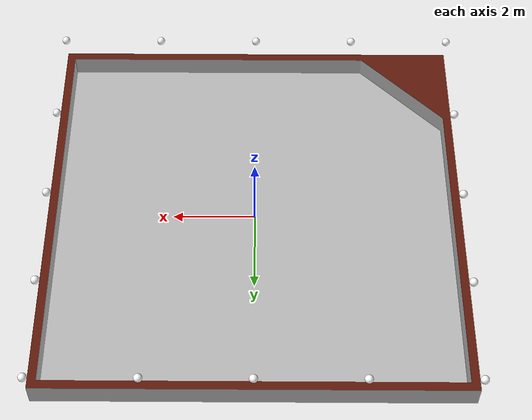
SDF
<sdf version='1.7'>
  <world name='default'>
    <include>
      <uri>model://beluga_demo_gazebo/models/low_profile_playground</uri>
    </include>
    <gravity>0 0 -9.8</gravity>
    <magnetic_field>6e-06 2.3e-05 -4.2e-05</magnetic_field>
    <atmosphere type='adiabatic'/>
    <physics type='ode'>
      <max_step_size>0.001</max_step_size>
      <real_time_factor>1</real_time_factor>
      <real_time_update_rate>1000</real_time_update_rate>
    </physics>
    <scene>
      <ambient>0.4 0.4 0.4 1</ambient>
      <background>0.2 0.2 0.2 1</background>
      <shadows>1</shadows>
      <grid>0</grid>
    </scene>
    <audio>
      <device>default</device>
    </audio>
    <wind/>
    <spherical_coordinates>
      <surface_model>EARTH_WGS84</surface_model>
      <latitude_deg>0</latitude_deg>
      <longitude_deg>0</longitude_deg>
      <elevation>0</elevation>
      <heading_deg>0</heading_deg>
    </spherical_coordinates>
    <model name='ceiling_light_0'>
      <pose>5 0 1 0 -0 0</pose>
      <link name='bulb'>
        <pose>0 0 0 0 -0 0</pose>
        <visual name='main'>
          <geometry>
            <sphere>
              <radius>0.10</radius>
            </sphere>
          </geometry>
          <material>
            <ambient>1 1 1 1</ambient>
            <diffuse>1 1 1 1</diffuse>
            <specular>0.1 0.1 0.1 1</specular>
            <emissive>1 1 1 1</emissive>
            <shininess>0.3</shininess>
          </material>
        </visual>
        <light name='source' type='spot'>
          <pose>0 0 0 0 -0 0</pose>
          <diffuse>1 1 0.6 1</diffuse>
          <specular>0.1 0.1 0.1 1</specular>
          <spot>
            <inner_angle>1.5708</inner_angle>
            <outer_angle>2.35619</outer_angle>
            <falloff>0.5</falloff>
          </spot>
          <attenuation>
            <range>3</range>
            <linear>0.6</linear>
            <constant>0.8</constant>
            <quadratic>0.2</quadratic>
          </attenuation>
          <cast_shadows>0</cast_shadows>
          <direction>0 0 -1</direction>
        </light>
        <self_collide>0</self_collide>
        <enable_wind>0</enable_wind>
      </link>
      <static>1</static>
      <self_collide>0</self_collide>
      <enable_wind>0</enable_wind>
    </model>
    <model name='ceiling_light_1'>
      <pose>5 2.5 1 0 -0 0</pose>
      <link name='bulb'>
        <pose>0 0 0 0 -0 0</pose>
        <visual name='main'>
          <geometry>
            <sphere>
              <radius>0.10</radius>
            </sphere>
          </geometry>
          <material>
            <ambient>1 1 1 1</ambient>
            <diffuse>1 1 1 1</diffuse>
            <specular>0.1 0.1 0.1 1</specular>
            <emissive>1 1 1 1</emissive>
            <shininess>0.3</shininess>
          </material>
        </visual>
        <light name='source' type='spot'>
          <pose>0 0 0 0 -0 0</pose>
          <diffuse>1 1 0.6 1</diffuse>
          <specular>0.1 0.1 0.1 1</specular>
          <spot>
            <inner_angle>1.5708</inner_angle>
            <outer_angle>2.35619</outer_angle>
            <falloff>0.5</falloff>
          </spot>
          <attenuation>
            <range>3</range>
            <linear>0.6</linear>
            <constant>0.8</constant>
            <quadratic>0.2</quadratic>
          </attenuation>
          <cast_shadows>0</cast_shadows>
          <direction>0 0 -1</direction>
        </light>
        <self_collide>0</self_collide>
        <enable_wind>0</enable_wind>
      </link>
      <static>1</static>
      <self_collide>0</self_collide>
      <enable_wind>0</enable_wind>
    </model>
    <model name='ceiling_light_2'>
      <pose>5 5 1 0 -0 0</pose>
      <link name='bulb'>
        <pose>0 0 0 0 -0 0</pose>
        <visual name='main'>
          <geometry>
            <sphere>
              <radius>0.10</radius>
            </sphere>
          </geometry>
          <material>
            <ambient>1 1 1 1</ambient>
            <diffuse>1 1 1 1</diffuse>
            <specular>0.1 0.1 0.1 1</specular>
            <emissive>1 1 1 1</emissive>
            <shininess>0.3</shininess>
          </material>
        </visual>
        <light name='source' type='spot'>
          <pose>0 0 0 0 -0 0</pose>
          <diffuse>1 1 0.6 1</diffuse>
          <specular>0.1 0.1 0.1 1</specular>
          <spot>
            <inner_angle>1.5708</inner_angle>
            <outer_angle>2.35619</outer_angle>
            <falloff>0.5</falloff>
          </spot>
          <attenuation>
            <range>3</range>
            <linear>0.6</linear>
            <constant>0.8</constant>
            <quadratic>0.2</quadratic>
          </attenuation>
          <cast_shadows>0</cast_shadows>
          <direction>0 0 -1</direction>
        </light>
        <self_collide>0</self_collide>
        <enable_wind>0</enable_wind>
      </link>
      <static>1</static>
      <self_collide>0</self_collide>
      <enable_wind>0</enable_wind>
    </model>
    <model name='ceiling_light_3'>
      <pose>2.5 5 1 0 -0 0</pose>
      <link name='bulb'>
        <pose>0 0 0 0 -0 0</pose>
        <visual name='main'>
          <geometry>
            <sphere>
              <radius>0.10</radius>
            </sphere>
          </geometry>
          <material>
            <ambient>1 1 1 1</ambient>
            <diffuse>1 1 1 1</diffuse>
            <specular>0.1 0.1 0.1 1</specular>
            <emissive>1 1 1 1</emissive>
            <shininess>0.3</shininess>
          </material>
        </visual>
        <light name='source' type='spot'>
          <pose>0 0 0 0 -0 0</pose>
          <diffuse>1 1 0.6 1</diffuse>
          <specular>0.1 0.1 0.1 1</specular>
          <spot>
            <inner_angle>1.5708</inner_angle>
            <outer_angle>2.35619</outer_angle>
            <falloff>0.5</falloff>
          </spot>
          <attenuation>
            <range>3</range>
            <linear>0.6</linear>
            <constant>0.8</constant>
            <quadratic>0.2</quadratic>
          </attenuation>
          <cast_shadows>0</cast_shadows>
          <direction>0 0 -1</direction>
        </light>
        <self_collide>0</self_collide>
        <enable_wind>0</enable_wind>
      </link>
      <static>1</static>
      <self_collide>0</self_collide>
      <enable_wind>0</enable_wind>
    </model>
    <model name='ceiling_light_4'>
      <pose>0 5 1 0 -0 0</pose>
      <link name='bulb'>
        <pose>0 0 0 0 -0 0</pose>
        <visual name='main'>
          <geometry>
            <sphere>
              <radius>0.10</radius>
            </sphere>
          </geometry>
          <material>
            <ambient>1 1 1 1</ambient>
            <diffuse>1 1 1 1</diffuse>
            <specular>0.1 0.1 0.1 1</specular>
            <emissive>1 1 1 1</emissive>
            <shininess>0.3</shininess>
          </material>
        </visual>
        <light name='source' type='spot'>
          <pose>0 0 0 0 -0 0</pose>
          <diffuse>1 1 0.6 1</diffuse>
          <specular>0.1 0.1 0.1 1</specular>
          <spot>
            <inner_angle>1.5708</inner_angle>
            <outer_angle>2.35619</outer_angle>
            <falloff>0.5</falloff>
          </spot>
          <attenuation>
            <range>3</range>
            <linear>0.6</linear>
            <constant>0.8</constant>
            <quadratic>0.2</quadratic>
          </attenuation>
          <cast_shadows>0</cast_shadows>
          <direction>0 0 -1</direction>
        </light>
        <self_collide>0</self_collide>
        <enable_wind>0</enable_wind>
      </link>
      <static>1</static>
      <self_collide>0</self_collide>
      <enable_wind>0</enable_wind>
    </model>
    <model name='ceiling_light_5'>
      <pose>-2.5 5 1 0 -0 0</pose>
      <link name='bulb'>
        <pose>0 0 0 0 -0 0</pose>
        <visual name='main'>
          <geometry>
            <sphere>
              <radius>0.10</radius>
            </sphere>
          </geometry>
          <material>
            <ambient>1 1 1 1</ambient>
            <diffuse>1 1 1 1</diffuse>
            <specular>0.1 0.1 0.1 1</specular>
            <emissive>1 1 1 1</emissive>
            <shininess>0.3</shininess>
          </material>
        </visual>
        <light name='source' type='spot'>
          <pose>0 0 0 0 -0 0</pose>
          <diffuse>1 1 0.6 1</diffuse>
          <specular>0.1 0.1 0.1 1</specular>
          <spot>
            <inner_angle>1.5708</inner_angle>
            <outer_angle>2.35619</outer_angle>
            <falloff>0.5</falloff>
          </spot>
          <attenuation>
            <range>3</range>
            <linear>0.6</linear>
            <constant>0.8</constant>
            <quadratic>0.2</quadratic>
          </attenuation>
          <cast_shadows>0</cast_shadows>
          <direction>0 0 -1</direction>
        </light>
        <self_collide>0</self_collide>
        <enable_wind>0</enable_wind>
      </link>
      <static>1</static>
      <self_collide>0</self_collide>
      <enable_wind>0</enable_wind>
    </model>
    <model name='ceiling_light_6'>
      <pose>-5 5 1 0 -0 0</pose>
      <link name='bulb'>
        <pose>0 0 0 0 -0 0</pose>
        <visual name='main'>
          <geometry>
            <sphere>
              <radius>0.10</radius>
            </sphere>
          </geometry>
          <material>
            <ambient>1 1 1 1</ambient>
            <diffuse>1 1 1 1</diffuse>
            <specular>0.1 0.1 0.1 1</specular>
            <emissive>1 1 1 1</emissive>
            <shininess>0.3</shininess>
          </material>
        </visual>
        <light name='source' type='spot'>
          <pose>0 0 0 0 -0 0</pose>
          <diffuse>1 1 0.6 1</diffuse>
          <specular>0.1 0.1 0.1 1</specular>
          <spot>
            <inner_angle>1.5708</inner_angle>
            <outer_angle>2.35619</outer_angle>
            <falloff>0.5</falloff>
          </spot>
          <attenuation>
            <range>3</range>
            <linear>0.6</linear>
            <constant>0.8</constant>
            <quadratic>0.2</quadratic>
          </attenuation>
          <cast_shadows>0</cast_shadows>
          <direction>0 0 -1</direction>
        </light>
        <self_collide>0</self_collide>
        <enable_wind>0</enable_wind>
      </link>
      <static>1</static>
      <self_collide>0</self_collide>
      <enable_wind>0</enable_wind>
    </model>
    <model name='ceiling_light_7'>
      <pose>-5 2.5 1 0 -0 0</pose>
      <link name='bulb'>
        <pose>0 0 0 0 -0 0</pose>
        <visual name='main'>
          <geometry>
            <sphere>
              <radius>0.10</radius>
            </sphere>
          </geometry>
          <material>
            <ambient>1 1 1 1</ambient>
            <diffuse>1 1 1 1</diffuse>
            <specular>0.1 0.1 0.1 1</specular>
            <emissive>1 1 1 1</emissive>
            <shininess>0.3</shininess>
          </material>
        </visual>
        <light name='source' type='spot'>
          <pose>0 0 0 0 -0 0</pose>
          <diffuse>1 1 0.6 1</diffuse>
          <specular>0.1 0.1 0.1 1</specular>
          <spot>
            <inner_angle>1.5708</inner_angle>
            <outer_angle>2.35619</outer_angle>
            <falloff>0.5</falloff>
          </spot>
          <attenuation>
            <range>3</range>
            <linear>0.6</linear>
            <constant>0.8</constant>
            <quadratic>0.2</quadratic>
          </attenuation>
          <cast_shadows>0</cast_shadows>
          <direction>0 0 -1</direction>
        </light>
        <self_collide>0</self_collide>
        <enable_wind>0</enable_wind>
      </link>
      <static>1</static>
      <self_collide>0</self_collide>
      <enable_wind>0</enable_wind>
    </model>
    <model name='ceiling_light_8'>
      <pose>-5 0 1 0 -0 0</pose>
      <link name='bulb'>
        <pose>0 0 0 0 -0 0</pose>
        <visual name='main'>
          <geometry>
            <sphere>
              <radius>0.10</radius>
            </sphere>
          </geometry>
          <material>
            <ambient>1 1 1 1</ambient>
            <diffuse>1 1 1 1</diffuse>
            <specular>0.1 0.1 0.1 1</specular>
            <emissive>1 1 1 1</emissive>
            <shininess>0.3</shininess>
          </material>
        </visual>
        <light name='source' type='spot'>
          <pose>0 0 0 0 -0 0</pose>
          <diffuse>1 1 0.6 1</diffuse>
          <specular>0.1 0.1 0.1 1</specular>
          <spot>
            <inner_angle>1.5708</inner_angle>
            <outer_angle>2.35619</outer_angle>
            <falloff>0.5</falloff>
          </spot>
          <attenuation>
            <range>3</range>
            <linear>0.6</linear>
            <constant>0.8</constant>
            <quadratic>0.2</quadratic>
          </attenuation>
          <cast_shadows>0</cast_shadows>
          <direction>0 0 -1</direction>
        </light>
        <self_collide>0</self_collide>
        <enable_wind>0</enable_wind>
      </link>
      <static>1</static>
      <self_collide>0</self_collide>
      <enable_wind>0</enable_wind>
    </model>
    <model name='ceiling_light_9'>
      <pose>-5 -2.5 1 0 -0 0</pose>
      <link name='bulb'>
        <pose>0 0 0 0 -0 0</pose>
        <visual name='main'>
          <geometry>
            <sphere>
              <radius>0.10</radius>
            </sphere>
          </geometry>
          <material>
            <ambient>1 1 1 1</ambient>
            <diffuse>1 1 1 1</diffuse>
            <specular>0.1 0.1 0.1 1</specular>
            <emissive>1 1 1 1</emissive>
            <shininess>0.3</shininess>
          </material>
        </visual>
        <light name='source' type='spot'>
          <pose>0 0 0 0 -0 0</pose>
          <diffuse>1 1 0.6 1</diffuse>
          <specular>0.1 0.1 0.1 1</specular>
          <spot>
            <inner_angle>1.5708</inner_angle>
            <outer_angle>2.35619</outer_angle>
            <falloff>0.5</falloff>
          </spot>
          <attenuation>
            <range>3</range>
            <linear>0.6</linear>
            <constant>0.8</constant>
            <quadratic>0.2</quadratic>
          </attenuation>
          <cast_shadows>0</cast_shadows>
          <direction>0 0 -1</direction>
        </light>
        <self_collide>0</self_collide>
        <enable_wind>0</enable_wind>
      </link>
      <static>1</static>
      <self_collide>0</self_collide>
      <enable_wind>0</enable_wind>
    </model>
    <model name='ceiling_light_10'>
      <pose>-5 -5 1 0 -0 0</pose>
      <link name='bulb'>
        <pose>0 0 0 0 -0 0</pose>
        <visual name='main'>
          <geometry>
            <sphere>
              <radius>0.10</radius>
            </sphere>
          </geometry>
          <material>
            <ambient>1 1 1 1</ambient>
            <diffuse>1 1 1 1</diffuse>
            <specular>0.1 0.1 0.1 1</specular>
            <emissive>1 1 1 1</emissive>
            <shininess>0.3</shininess>
          </material>
        </visual>
        <light name='source' type='spot'>
          <pose>0 0 0 0 -0 0</pose>
          <diffuse>1 1 0.6 1</diffuse>
          <specular>0.1 0.1 0.1 1</specular>
          <spot>
            <inner_angle>1.5708</inner_angle>
            <outer_angle>2.35619</outer_angle>
            <falloff>0.5</falloff>
          </spot>
          <attenuation>
            <range>3</range>
            <linear>0.6</linear>
            <constant>0.8</constant>
            <quadratic>0.2</quadratic>
          </attenuation>
          <cast_shadows>0</cast_shadows>
          <direction>0 0 -1</direction>
        </light>
        <self_collide>0</self_collide>
        <enable_wind>0</enable_wind>
      </link>
      <static>1</static>
      <self_collide>0</self_collide>
      <enable_wind>0</enable_wind>
    </model>
    <model name='ceiling_light_11'>
      <pose>-2.5 -5 1 0 -0 0</pose>
      <link name='bulb'>
        <pose>0 0 0 0 -0 0</pose>
        <visual name='main'>
          <geometry>
            <sphere>
              <radius>0.10</radius>
            </sphere>
          </geometry>
          <material>
            <ambient>1 1 1 1</ambient>
            <diffuse>1 1 1 1</diffuse>
            <specular>0.1 0.1 0.1 1</specular>
            <emissive>1 1 1 1</emissive>
            <shininess>0.3</shininess>
          </material>
        </visual>
        <light name='source' type='spot'>
          <pose>0 0 0 0 -0 0</pose>
          <diffuse>1 1 0.6 1</diffuse>
          <specular>0.1 0.1 0.1 1</specular>
          <spot>
            <inner_angle>1.5708</inner_angle>
            <outer_angle>2.35619</outer_angle>
            <falloff>0.5</falloff>
          </spot>
          <attenuation>
            <range>3</range>
            <linear>0.6</linear>
            <constant>0.8</constant>
            <quadratic>0.2</quadratic>
          </attenuation>
          <cast_shadows>0</cast_shadows>
          <direction>0 0 -1</direction>
        </light>
        <self_collide>0</self_collide>
        <enable_wind>0</enable_wind>
      </link>
      <static>1</static>
      <self_collide>0</self_collide>
      <enable_wind>0</enable_wind>
    </model>
    <model name='ceiling_light_12'>
      <pose>0 -5 1 0 -0 0</pose>
      <link name='bulb'>
        <pose>0 0 0 0 -0 0</pose>
        <visual name='main'>
          <geometry>
            <sphere>
              <radius>0.10</radius>
            </sphere>
          </geometry>
          <material>
            <ambient>1 1 1 1</ambient>
            <diffuse>1 1 1 1</diffuse>
            <specular>0.1 0.1 0.1 1</specular>
            <emissive>1 1 1 1</emissive>
            <shininess>0.3</shininess>
          </material>
        </visual>
        <light name='source' type='spot'>
          <pose>0 0 0 0 -0 0</pose>
          <diffuse>1 1 0.6 1</diffuse>
          <specular>0.1 0.1 0.1 1</specular>
          <spot>
            <inner_angle>1.5708</inner_angle>
            <outer_angle>2.35619</outer_angle>
            <falloff>0.5</falloff>
          </spot>
          <attenuation>
            <range>3</range>
            <linear>0.6</linear>
            <constant>0.8</constant>
            <quadratic>0.2</quadratic>
          </attenuation>
          <cast_shadows>0</cast_shadows>
          <direction>0 0 -1</direction>
        </light>
        <self_collide>0</self_collide>
        <enable_wind>0</enable_wind>
      </link>
      <static>1</static>
      <self_collide>0</self_collide>
      <enable_wind>0</enable_wind>
    </model>
    <model name='ceiling_light_13'>
      <pose>2.5 -5 1 0 -0 0</pose>
      <link name='bulb'>
        <pose>0 0 0 0 -0 0</pose>
        <visual name='main'>
          <geometry>
            <sphere>
              <radius>0.10</radius>
            </sphere>
          </geometry>
          <material>
            <ambient>1 1 1 1</ambient>
            <diffuse>1 1 1 1</diffuse>
            <specular>0.1 0.1 0.1 1</specular>
            <emissive>1 1 1 1</emissive>
            <shininess>0.3</shininess>
          </material>
        </visual>
        <light name='source' type='spot'>
          <pose>0 0 0 0 -0 0</pose>
          <diffuse>1 1 0.6 1</diffuse>
          <specular>0.1 0.1 0.1 1</specular>
          <spot>
            <inner_angle>1.5708</inner_angle>
            <outer_angle>2.35619</outer_angle>
            <falloff>0.5</falloff>
          </spot>
          <attenuation>
            <range>3</range>
            <linear>0.6</linear>
            <constant>0.8</constant>
            <quadratic>0.2</quadratic>
          </attenuation>
          <cast_shadows>0</cast_shadows>
          <direction>0 0 -1</direction>
        </light>
        <self_collide>0</self_collide>
        <enable_wind>0</enable_wind>
      </link>
      <static>1</static>
      <self_collide>0</self_collide>
      <enable_wind>0</enable_wind>
    </model>
    <model name='ceiling_light_14'>
      <pose>5 -5 1 0 -0 0</pose>
      <link name='bulb'>
        <pose>0 0 0 0 -0 0</pose>
        <visual name='main'>
          <geometry>
            <sphere>
              <radius>0.10</radius>
            </sphere>
          </geometry>
          <material>
            <ambient>1 1 1 1</ambient>
            <diffuse>1 1 1 1</diffuse>
            <specular>0.1 0.1 0.1 1</specular>
            <emissive>1 1 1 1</emissive>
            <shininess>0.3</shininess>
          </material>
        </visual>
        <light name='source' type='spot'>
          <pose>0 0 0 0 -0 0</pose>
          <diffuse>1 1 0.6 1</diffuse>
          <specular>0.1 0.1 0.1 1</specular>
          <spot>
            <inner_angle>1.5708</inner_angle>
            <outer_angle>2.35619</outer_angle>
            <falloff>0.5</falloff>
          </spot>
          <attenuation>
            <range>3</range>
            <linear>0.6</linear>
            <constant>0.8</constant>
            <quadratic>0.2</quadratic>
          </attenuation>
          <cast_shadows>0</cast_shadows>
          <direction>0 0 -1</direction>
        </light>
        <self_collide>0</self_collide>
        <enable_wind>0</enable_wind>
      </link>
      <static>1</static>
      <self_collide>0</self_collide>
      <enable_wind>0</enable_wind>
    </model>
    <model name='ceiling_light_15'>
      <pose>5 -2.5 1 0 -0 0</pose>
      <link name='bulb'>
        <pose>0 0 0 0 -0 0</pose>
        <visual name='main'>
          <geometry>
            <sphere>
              <radius>0.10</radius>
            </sphere>
          </geometry>
          <material>
            <ambient>1 1 1 1</ambient>
            <diffuse>1 1 1 1</diffuse>
            <specular>0.1 0.1 0.1 1</specular>
            <emissive>1 1 1 1</emissive>
            <shininess>0.3</shininess>
          </material>
        </visual>
        <light name='source' type='spot'>
          <pose>0 0 0 0 -0 0</pose>
          <diffuse>1 1 0.6 1</diffuse>
          <specular>0.1 0.1 0.1 1</specular>
          <spot>
            <inner_angle>1.5708</inner_angle>
            <outer_angle>2.35619</outer_angle>
            <falloff>0.5</falloff>
          </spot>
          <attenuation>
            <range>3</range>
            <linear>0.6</linear>
            <constant>0.8</constant>
            <quadratic>0.2</quadratic>
          </attenuation>
          <cast_shadows>0</cast_shadows>
          <direction>0 0 -1</direction>
        </light>
        <self_collide>0</self_collide>
        <enable_wind>0</enable_wind>
      </link>
      <static>1</static>
      <self_collide>0</self_collide>
      <enable_wind>0</enable_wind>
    </model>
    <gui fullscreen='0'>
      <camera name='user_camera'>
        <pose>-8.65765 -8.44656 10.7828 0 0.798797 0.82</pose>
        <view_controller>orbit</view_controller>
        <projection_type>perspective</projection_type>
      </camera>
    </gui>
  </world>
</sdf>

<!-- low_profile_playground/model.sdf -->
<sdf version='1.7'>
  <model name='low_profile_playground'>
    <link name='link'>
      <collision name='collision'>
        <max_contacts>10</max_contacts>
        <geometry>
          <mesh>
            <uri>meshes/low_profile_playground.dae</uri>
            <scale>1 1 1</scale>
          </mesh>
        </geometry>
        <surface>
          <contact>
            <ode/>
          </contact>
          <bounce/>
          <friction>
            <torsional>
              <ode/>
            </torsional>
            <ode/>
          </friction>
        </surface>
      </collision>
      <visual name='visual'>
        <geometry>
          <mesh>
            <uri>meshes/low_profile_playground.dae</uri>
            <scale>1 1 1</scale>
          </mesh>
        </geometry>
      </visual>
      <self_collide>0</self_collide>
      <enable_wind>0</enable_wind>
      <kinematic>0</kinematic>
    </link>
    <static>1</static>
  </model>
</sdf>
